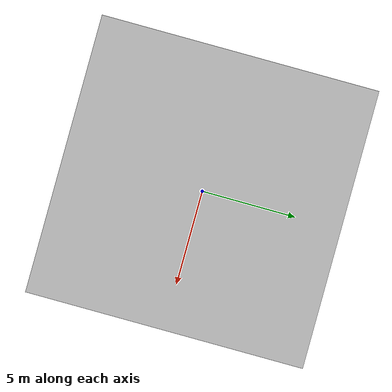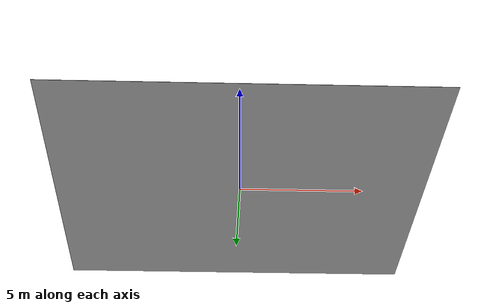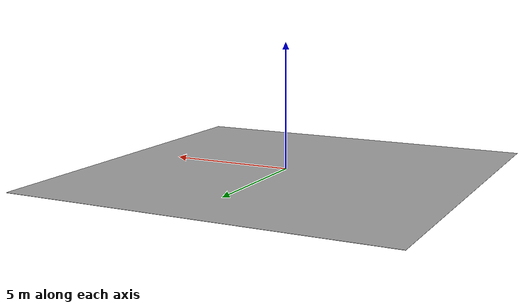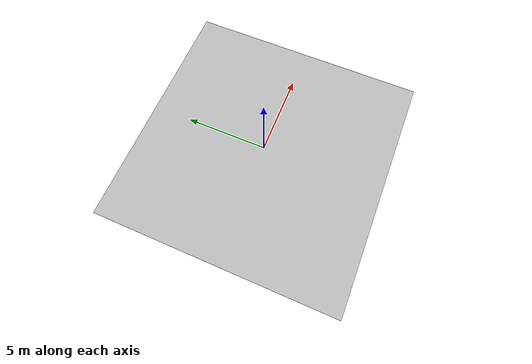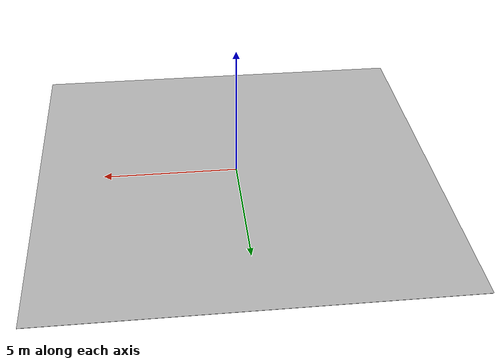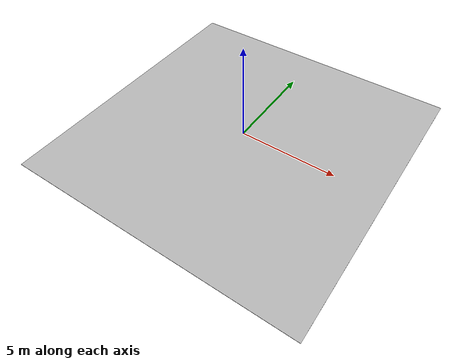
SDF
<?xml version="1.0" ?>
<sdf version="1.5">
  <model name="box">
    <link name="base">
      <inertial>
        <mass>0.1</mass>
      </inertial>
      <visual name="visual">
        <pose>0 0 -0.1 0 0 0</pose>
        <geometry>
          <box>
            <size>15 15 0.01</size>
          </box>
        </geometry>
      </visual>
      <collision name="collision">
        <pose>0 0 -0.1 0 0 0</pose>
        <geometry>
          <box>
            <size>15 15 0.01</size>
          </box>
        </geometry>
      </collision>
    </link>
  </model>
</sdf>
